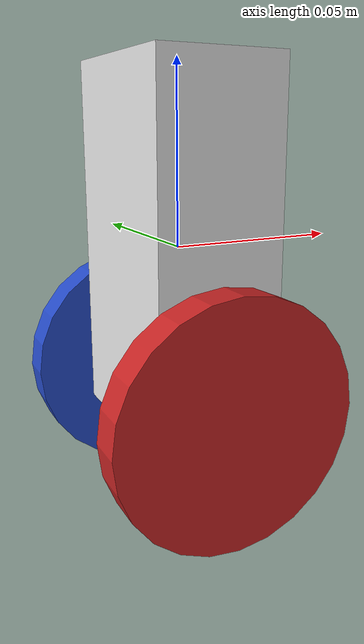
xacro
<?xml version="1.0"?>
<robot xmlns:xacro="http://www.ros.org/wiki/xacro" name="wheely_boi">
<!-- Constants -->
  <xacro:property name="wheel_separation" value="0.070" />
  <xacro:property name="wheel_radius" value="0.034" />
  <xacro:property name="wheel_width" value="0.010" />
  <xacro:property name="body_height" value="0.1" />
  <xacro:property name="body_width" value="0.050" />
  <xacro:property name="body_length" value="0.035" />
  <xacro:property name="camera_link" value="0.01" />

<!-- Materials -->

  <gazebo reference="edumip_body">
    <material>Gazebo/White</material>
    <mu1>0.2</mu1>
    <mu2>0.2</mu2>
  </gazebo>

  <gazebo reference="wheelR">
    <material>Gazebo/Red</material>
    <mu1>0.84</mu1>
    <mu2>0.84</mu2>
  </gazebo>

  <gazebo reference="wheelL">
    <material>Gazebo/Blue</material>
    <mu1>0.84</mu1>
    <mu2>0.84</mu2>
  </gazebo>

  <gazebo reference="camera_link">
    <material>Gazebo/Green</material>
    <mu1>0.2</mu1>
    <mu2>0.2</mu2>
  </gazebo>

  <gazebo reference="camera_link">
    <sensor type="camera" name="camera1">
      <update_rate>30.0</update_rate>
      <camera name="head">
        <horizontal_fov>1.3962634</horizontal_fov>
        <image>
          <width>800</width>
          <height>800</height>
          <format>R8G8B8</format>
        </image>
        <clip>
          <near>0.02</near>
          <far>300</far>
        </clip>
        <noise>
          <type>gaussian</type>
          <!-- Noise is sampled independently per pixel on each frame.
               That pixel's noise value is added to each of its color
               channels, which at that point lie in the range [0,1]. -->
          <mean>0.0</mean>
          <stddev>0.007</stddev>
        </noise>
      </camera>
      <plugin name="camera_controller" filename="libgazebo_ros_camera.so">
        <alwaysOn>true</alwaysOn>
        <updateRate>0.0</updateRate>
        <cameraName>wheely_boi/camera1</cameraName>
        <imageTopicName>image_raw</imageTopicName>
        <cameraInfoTopicName>camera_info</cameraInfoTopicName>
        <frameName>camera_link_optical</frameName>
        <!-- setting hackBaseline to anything but 0.0 will cause a misalignment
            between the gazebo sensor image and the frame it is supposed to
            be attached to -->
        <hackBaseline>0.0</hackBaseline>
        <distortionK1>0.0</distortionK1>
        <distortionK2>0.0</distortionK2>
        <distortionK3>0.0</distortionK3>
        <distortionT1>0.0</distortionT1>
        <distortionT2>0.0</distortionT2>
        <CxPrime>0</CxPrime>
        <Cx>0.0</Cx>
        <Cy>0.0</Cy>
        <focalLength>0.0</focalLength>
      </plugin>
    </sensor>
  </gazebo>

<!-- Physical properties -->
  <link name="edumip_body">
    <visual>
      <geometry>
        <box size="${body_length} ${body_width} ${body_height}"/>
      </geometry>
    </visual>

    <collision>
      <geometry>
        <box size="${body_length} ${body_width} ${body_height}"/>
      </geometry>
    </collision>

    <inertial>
      <mass value="0.18"/>
      <inertia ixx="6.0e-4" ixy="0" ixz="0" iyy="6.0e-4" iyz="0" izz="6.0e-4"/>
    </inertial>
  </link>

  <link name="camera_link">
    <collision>
      <origin xyz="0 0 0" rpy="0 0 0"/>
      <geometry>
        <box size="${camera_link} ${camera_link} ${camera_link}"/>
      </geometry>
    </collision>

    <visual>
      <origin xyz="0 0 0" rpy="0 0 0"/>
      <geometry>
    <box size="${camera_link} ${camera_link} ${camera_link}"/>
      </geometry>
      <material name="green"/>
    </visual>

    <inertial>
      <mass value="1e-5" />
      <origin xyz="0 0 0" rpy="0 0 0"/>
      <inertia ixx="1e-6" ixy="0" ixz="0" iyy="1e-6" iyz="0" izz="1e-6" />
    </inertial>
  </link>

<!-- Macro definition of a wheel -->
  <xacro:macro name="wheel_link" params="name radius width mass">
    <link name="${name}">
      <visual>
        <geometry>
          <cylinder length="${width}" radius="${radius}"/>
        </geometry>
      </visual>

      <collision>
        <geometry>
          <cylinder length="${width}" radius="${radius}"/>
        </geometry>
      </collision>

      <inertial>
        <mass value="${mass}"/>
        <inertia ixx="1.75e-5" ixy="0.0" ixz="0.0" iyy="1.75e-5" iyz="0.0" izz="1.75e-5"/>
      </inertial>
    </link>
  </xacro:macro>

<!-- Macro usage -->
  <xacro:wheel_link name="wheelL" radius="${wheel_radius}" width="${wheel_width}" mass="0.03"/>
  <xacro:wheel_link name="wheelR" radius="${wheel_radius}" width="${wheel_width}" mass="0.03"/>

<!-- Joints -->
  <joint name="jointL" type="continuous">
    <parent link="edumip_body"/>
    <child link="wheelL"/>
    <axis xyz="0 0 1"/>
    <origin xyz="0 ${body_width/2 + wheel_width/2} -${body_height/2 - 0.01}" rpy="${pi/2} 0 0" />
    <dynamics friction="0.1"/>
  </joint>

  <joint name="jointR" type="continuous">
    <parent link="edumip_body"/>
    <child link="wheelR"/>
    <axis xyz="0 0 1"/>
    <origin xyz="0 -${body_width/2 + wheel_width/2} -${body_height/2 - 0.01}" rpy="${pi/2} 0 0" />
    <dynamics friction="0.1"/>
  </joint>

  <joint name="camera_joint" type="fixed">
    <parent link="edumip_body"/>
    <child link="camera_link"/>
    <axis xyz="0 1 0" />
    <origin xyz="${body_width/2} 0 ${camera_link}" rpy="0 0 0"/>
  </joint>

<!-- Plugin Declaration -->
  <gazebo>
    <plugin name="wb_plugin" filename="libwb_plugin.so"> </plugin>
  </gazebo>

</robot>
